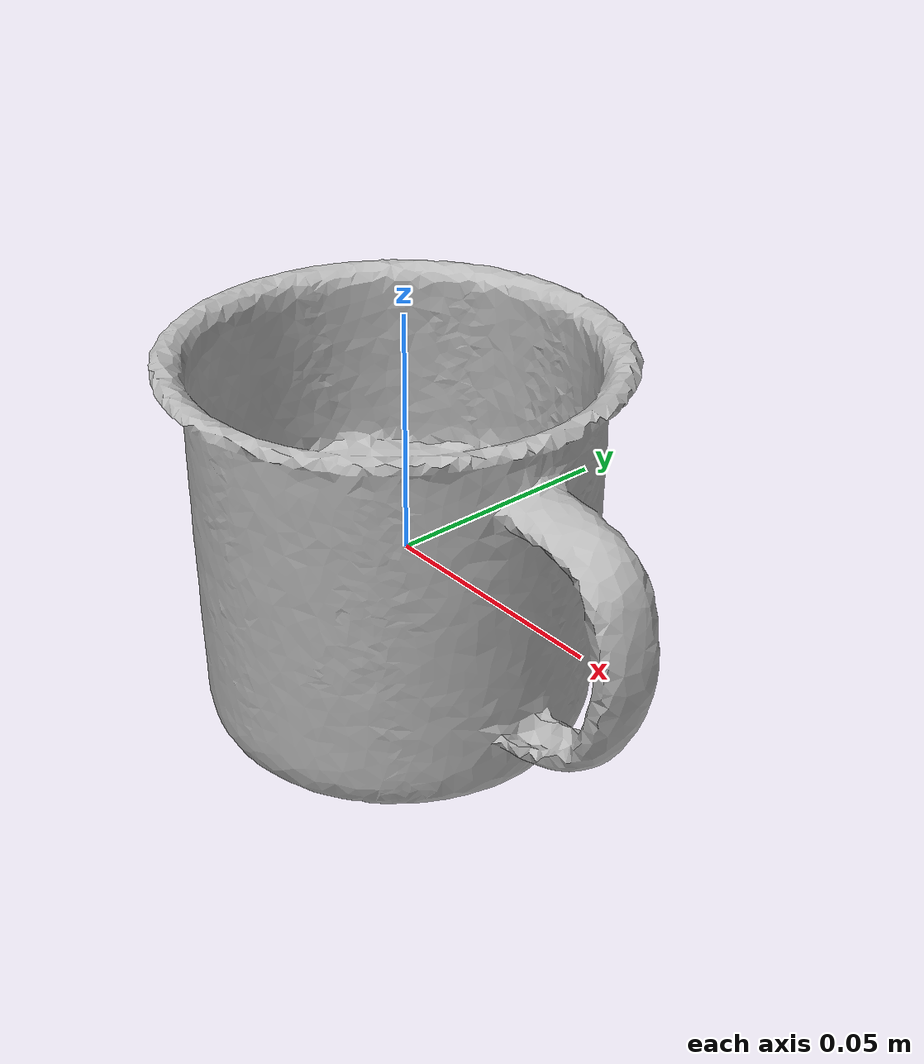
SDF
<?xml version='1.0'?>
<sdf version="1.4">
  <model name="mug">
    <static>false</static>
    <link name="link">
      <inertial>
        <pose>0 0 0 2.218343732653022 -1.4689543656478918 -2.2505049476744783</pose>
        <mass>0.00013812094844812262</mass>
        <inertia>
          <ixx>1.728596901312489e-07</ixx>
          <ixy>-4.301339185275744e-23</ixy>
          <ixz>-1.6543612251060553e-24</ixz>
          <iyy>1.3507073823129268e-07</iyy>
          <iyz>5.686866711302065e-24</iyz>
          <izz>1.1879517405979687e-07</izz>
        </inertia>
      </inertial>
      <collision name="collision">
        <geometry>
          <mesh>
            <!-- Use a downsampled mesh for collisions -->
            <uri>model://025_mug/google_16k/textured_simple.obj</uri>
	        </mesh>
        </geometry>
        <surface>
      </surface>
      </collision>
      <visual name="visual">
        <geometry>
          <mesh>
            <uri>model://025_mug/google_16k/textured_simple.obj</uri>
	        </mesh>
        </geometry>
      </visual>
    </link>
  </model>
</sdf>
